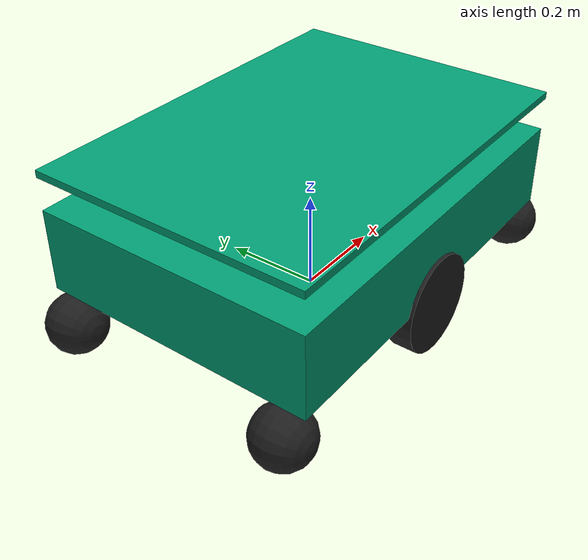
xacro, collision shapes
<?xml version="1.0"?>
<robot xmlns:xacro="http://www.ros.org/wiki/xacro" name="bcr_bot_amr2">

    <!--................................ XACRO CONSTANTS .............................. -->

    <!-- AMR-2 Scout: lighter chassis (45 kg vs AMR-1's 70 kg ≈ 64%) -->
    <xacro:property name="chassis_mass" value="45"/>
    <xacro:property name="chassis_length" value="0.81"/>
    <xacro:property name="chassis_width" value="0.576"/>
    <xacro:property name="chassis_height" value="0.171"/>

    <xacro:property name="traction_wheel_mass" value="1"/>
    <xacro:property name="traction_wheel_base" value="0.792"/>
    <xacro:property name="traction_max_wheel_torque" value="20000"/>
    <xacro:property name="traction_wheel_friction" value="5.0"/>

    <xacro:property name="trolley_wheel_mass" value="0.1"/>
    <xacro:property name="trolley_track_width" value="0.486"/>
    <xacro:property name="trolley_wheel_friction" value="0.0"/>
    <xacro:property name="trolley_wheel_radius" value="0.06"/>
    <!-- a small constant for drive wheel ground engagement (3mm preload to prevent teeter-totter) -->
    <xacro:property name="eps" value="0.003"/>

    <xacro:property name="traction_wheel_radius" value="0.1"/>
    <xacro:property name="traction_wheel_width" value="0.05"/>
    <xacro:property name="traction_track_width" value="0.54"/>

    <xacro:property name="two_d_lidar_update_rate" value="30"/>
    <xacro:property name="two_d_lidar_sample_size" value="361"/>
    <xacro:property name="two_d_lidar_min_angle" value="0"/>
    <xacro:property name="two_d_lidar_max_angle" value="360"/>
    <xacro:property name="two_d_lidar_min_range" value="0.55"/>
    <xacro:property name="two_d_lidar_max_range" value="16"/>

    <xacro:property name="camera_baseline" value="0.06"/>
    <xacro:property name="camera_height" value="0.10"/>
    <xacro:property name="camera_horizontal_fov" value="60"/>

    <xacro:arg name="robot_name" default="bcr_bot_amr2"/>
    <xacro:arg name="robot_namespace" default=""/>
    <xacro:arg name="wheel_odom_topic" default="odom" />
    <xacro:arg name="camera_enabled" default="false" />
    <xacro:arg name="stereo_camera_enabled" default="false" />
    <xacro:arg name="two_d_lidar_enabled" default="false" />
    <xacro:arg name="publish_wheel_odom_tf" default="true" />
    <xacro:arg name="conveyor_enabled" default="false"/>
    <xacro:arg name="ground_truth_frame" default="map"/>
    <xacro:arg name="sim_gazebo" default="false" />
    <xacro:arg name="sim_ign" default="false" />
    <xacro:arg name="sim_gz" default="false" />
    <xacro:arg name="odometry_source" default="world" />

    <xacro:property name="odometry_source" value="$(arg odometry_source)"/>

    <!-- ............................... LOAD MACROS ................................. -->

    <xacro:include filename="$(find amr_sim)/urdf/materials.xacro"/>
    <xacro:include filename="$(find amr_sim)/urdf/macros.xacro"/>

    <xacro:if value="$(arg sim_gazebo)">
        <xacro:include filename="$(find amr_sim)/urdf/gazebo.xacro"/>
    </xacro:if>

    <xacro:if value="$(arg sim_ign)">
        <xacro:include filename="$(find amr_sim)/urdf/ign.xacro"/>
    </xacro:if>

    <xacro:if value="$(arg sim_gz)">
        <xacro:include filename="$(find amr_sim)/urdf/gz_amr2.xacro"/>
    </xacro:if>

    <!-- ................................ BASE LINK .................................. -->
    <link name="base_footprint"/>

    <link name="base_link"/>

    <joint name="base_joint" type="fixed">
        <parent link="base_footprint"/>
        <child link="base_link"/>
        <origin xyz="0.0 0 ${chassis_height/2 + traction_wheel_radius}" rpy="0 0 0.0" />
    </joint>

    <link name="chassis_link">

        <collision>
            <origin xyz="0 0 0.0" rpy="0 0 0" />
            <geometry>
                <box size="${chassis_length} ${chassis_width} ${chassis_height}"/>
            </geometry>
        </collision>

        <visual>
            <origin xyz="0 0 -0.205" rpy="0 0 0" />
            <geometry>
                <mesh filename="package://amr_sim/meshes/bcr_bot_mesh.dae" scale="0.9 0.9 0.9"/>
            </geometry>
        </visual>

        <inertial>
            <mass value="${chassis_mass}" />
            <xacro:box_inertia m="${chassis_mass}" x="${chassis_length}" y="${chassis_width}" z = "${chassis_height}"/>
        </inertial>

    </link>

    <joint name="chassis_joint" type="fixed">
        <parent link="base_link"/>
        <child link="chassis_link"/>
        <origin xyz="0.0 0 0" rpy="0 0 0.0" />
    </joint>

    <!-- ................................ WHEELS ..................................... -->

    <xacro:trolley_wheel cardinality="front" dexterity="left" origin_x="${chassis_length/2}" origin_y="${trolley_track_width/2}" origin_z="-${trolley_wheel_radius+chassis_height/2}"/>
    <xacro:trolley_wheel cardinality="front" dexterity="right" origin_x="${chassis_length/2}" origin_y="-${trolley_track_width/2}" origin_z="-${trolley_wheel_radius+chassis_height/2}"/>

    <xacro:trolley_wheel cardinality="back" dexterity="left" origin_x="-${chassis_length/2}" origin_y="${trolley_track_width/2}" origin_z="-${trolley_wheel_radius+chassis_height/2}"/>
    <xacro:trolley_wheel cardinality="back" dexterity="right" origin_x="-${chassis_length/2}" origin_y="-${trolley_track_width/2}" origin_z="-${trolley_wheel_radius+chassis_height/2}"/>

    <xacro:traction_wheel cardinality="middle" dexterity="left" origin_x="0" origin_y="${traction_track_width/2}" origin_z="-${chassis_height/2+2*trolley_wheel_radius+eps-traction_wheel_radius}"/>
    <xacro:traction_wheel cardinality="middle" dexterity="right" origin_x="0" origin_y="-${traction_track_width/2}" origin_z="-${chassis_height/2+2*trolley_wheel_radius+eps-traction_wheel_radius}"/>

    <!-- ............................. 2D LIDAR ........................................ -->

    <xacro:if value="$(arg two_d_lidar_enabled)">

        <link name="two_d_lidar">
            <collision>
                <origin xyz="0 0 0" rpy="0 0 0" />
                <geometry>
                    <cylinder length="0.06" radius="0.075"/>
                </geometry>
            </collision>

            <visual>
                <origin xyz="0 0 0" rpy="0 0 0" />
                <geometry>
                    <cylinder length="0.06" radius="0.075"/>
                </geometry>
                <material name="aluminium"/>
            </visual>

            <inertial>
                <origin xyz="0 0 0" rpy="0 0 0" />
                <mass value="0.1"/>
                <xacro:cylinder_inertia m="0.1" r="0.075" h="0.06"/>
            </inertial>
        </link>

        <joint name="two_d_lidar_joint" type="fixed">
            <parent link="base_link"/>
            <child link="two_d_lidar"/>
            <origin xyz="0.0 0 0.09" rpy="0 0 0" />
        </joint>

        <gazebo reference="two_d_lidar">
            <material>Gazebo/White</material>
        </gazebo>

    </xacro:if>

    <!-- ............................. IMU ........................................ -->

    <link name="imu_frame"/>

    <joint name="imu_joint" type="fixed">
        <parent link="base_link"/>
        <child link="imu_frame"/>
        <origin xyz="0.0 0.0 0.08" rpy="0.0 0.0 0.0"/>
    </joint>

    <!-- ............................. CAMERA ........................................ -->

    <xacro:if value="$(arg camera_enabled)">

        <!-- KINECT CAMERA -->

        <link name="kinect_camera">

            <collision>
                <origin xyz="0 0 0" rpy="0 0 0" />
                <geometry>
                    <box size="0.07 0.3 0.09"/>
                </geometry>
            </collision>

            <visual>
                <origin xyz="0 0 0" rpy="0 0 0" />
                <geometry>
                    <mesh filename="package://amr_sim/meshes/kinect/d415.dae"/>
                </geometry>
                <material name="black"/>
            </visual>

            <inertial>
                <mass value="0.01"/>
                <xacro:box_inertia m="0.01" x="0.07" y="0.3" z = "0.09"/>
            </inertial>

        </link>

        <joint name="kinect_camera_joint" type="fixed">
            <origin rpy="0 0 0" xyz="${chassis_length/2} 0 ${chassis_height/7}"/>
            <parent link="base_link"/>
            <child link="kinect_camera"/>
        </joint>

        <link name="kinect_camera_optical"/>

        <joint name="kinect_camera_optical_joint" type="fixed">
            <origin xyz="0 0 0" rpy="${-pi/2} 0 ${-pi/2}"/>
            <parent link="kinect_camera"/>
            <child link="kinect_camera_optical"/>
        </joint>

    </xacro:if>

    <!-- .............................STEREO CAMERA ........................................ -->

    <xacro:if value="$(arg stereo_camera_enabled)">

        <!-- STEREO CAMERA -->

        <link name="stereo_camera">

            <collision>
                <origin xyz="0 0 0" rpy="0 0 0" />
                <geometry>
                    <box size="0.07 0.3 0.09"/>
                </geometry>
            </collision>

            <visual>
                <origin xyz="0 0 0" rpy="0 0 0" />
                <geometry>
                    <mesh filename="package://amr_sim/meshes/kinect/d415.dae"/>
                </geometry>
                <material name="black"/>
            </visual>

            <inertial>
                <mass value="0.01"/>
                <xacro:box_inertia m="0.01" x="0.07" y="0.3" z = "0.09"/>
            </inertial>

        </link>

        <joint name="stereo_camera_joint" type="fixed">
            <origin rpy="0 0 0" xyz="${chassis_length/2} 0 ${chassis_height/7}"/>
            <parent link="base_link"/>
            <child link="stereo_camera"/>
        </joint>

        <link name="stereo_camera_optical"/>

        <joint name="stereo_camera_optical_joint" type="fixed">
            <origin xyz="0 0 0" rpy="${-pi/2} 0 ${-pi/2}"/>
            <parent link="stereo_camera"/>
            <child link="stereo_camera_optical"/>
        </joint>

    </xacro:if>

    <!-- ............................. ROOF ........................................ -->

    <link name="roof_link">

        <collision>
            <origin xyz="0 0 0" rpy="0 0 0" />
            <geometry>
                <box size="${chassis_length} ${chassis_width} 0.015"/>
            </geometry>
        </collision>

        <inertial>
            <mass value="1"/>
            <xacro:box_inertia m="1" x="${chassis_length}" y="${chassis_width}" z = "0.015"/>
        </inertial>

    </link>

    <joint name="roof joint" type="fixed">
        <parent link="chassis_link"/>
        <child link="roof_link"/>
        <origin xyz="0 0 0.16" rpy="0 0 0" />
    </joint>

    <!-- ............................. CONVEYOR ........................................ -->

    <xacro:if value="$(arg conveyor_enabled)">

        <link name="conveyor_belt">

            <collision>
                <origin xyz="0 0 0" rpy="0 0 0" />
                <geometry>
                    <box size="1 0.6 0.015"/>
                </geometry>
            </collision>

            <visual>
                <origin xyz="0 0 0" rpy="0 0 0"/>
                <geometry>
                    <box size="1 0.6 0.015"/>
                </geometry>
            </visual>

            <inertial>
                <mass value="1"/>
                <xacro:box_inertia m="1" x="1" y="0.6" z = "0.015"/>
            </inertial>

        </link>

        <joint name="conveyor_joint" type="fixed">
            <parent link="base_link"/>
            <child link="conveyor_belt"/>
            <origin xyz="0 0 0.25" rpy="0 0 0" />
        </joint>

    </xacro:if>

</robot>

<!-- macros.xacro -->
<robot xmlns:xacro="http://www.ros.org/wiki/xacro" name="bcr_bot">

    <!--................................ INERTIA MATRICES .............................. -->

    <xacro:macro name="cylinder_inertia" params="m r h">
        <inertia ixx="${m * (3 * r * r + h * h) / 12}" ixy="0" ixz="0" iyy="${m * (3 * r * r + h * h) / 12}" iyz="0" izz="${m * r * r / 2}" />
    </xacro:macro>

    <xacro:macro name="box_inertia" params="m x y z">
        <inertia ixx="${m * (y * y + z * z) / 12}" ixy="0" ixz="0" iyy="${m * (x * x + z * z) / 12}" iyz="0" izz="${m * (y * y + x * x) / 12}" />
    </xacro:macro>

    <xacro:macro name="sphere_inertia" params="m r">
        <inertia ixx="${2 * m * r * r / 5}" ixy="0" ixz="0" iyy="${2 * m * r * r / 5}" iyz="0" izz="${2 * m * r * r / 5}" />
    </xacro:macro>

    <!-- ............................... TROLLEY WHEEL DEFINITION .............................. -->

    <xacro:macro name="trolley_wheel" params="cardinality dexterity origin_x origin_y origin_z">
        <link name="${cardinality}_${dexterity}_wheel">
            <collision>
                <origin xyz="0 0 0" rpy="0 ${pi/2} ${pi/2}" />
                <geometry>
                    <sphere radius="${trolley_wheel_radius}"/>
                </geometry>
            </collision>

            <inertial>
                <origin xyz="0 0 0" rpy="0 0 0" />
                <mass value="${trolley_wheel_mass}"/>
                <xacro:sphere_inertia m="${trolley_wheel_mass}" r="${trolley_wheel_radius}"/>
            </inertial>
        </link>

        <gazebo reference="${cardinality}_${dexterity}_wheel">
            <collision>
                <surface>
                    <friction>
                        <ode>
                            <mu>0.0</mu>
                            <mu2>0.0</mu2>
                            <slip1>1.0</slip1>
                            <slip2>1.0</slip2>
                        </ode>
                    </friction>
                    <contact>
                        <ode>
                            <kp>25000.0</kp>
                            <kd>100.0</kd>
                            <min_depth>0.040</min_depth>
                        </ode>
                    </contact>
                </surface>
            </collision>
        </gazebo>

        <joint name="${cardinality}_${dexterity}_wheel_joint" type="fixed">
            <parent link="base_link"/>
            <child link="${cardinality}_${dexterity}_wheel"/>
            <origin xyz="${origin_x} ${origin_y} ${origin_z}" rpy="0 0 0" />
            <axis xyz="0 1 0" rpy="0 0 0" />
        </joint>

        <gazebo reference="${cardinality}_${dexterity}_wheel">
            <material>Gazebo/Black</material>
        </gazebo>
    </xacro:macro>

    <xacro:macro name="traction_wheel" params="cardinality dexterity origin_x origin_y origin_z">
        <link name="${cardinality}_${dexterity}_wheel">
            <collision>
                <origin xyz="0 0 0" rpy="0 ${pi/2} ${pi/2}" />
                <geometry>
                    <cylinder length="${traction_wheel_width}" radius="${traction_wheel_radius}"/>
                </geometry>
                <self_collide>false</self_collide>
            </collision>

            <inertial>
                <origin xyz="0 0 0" rpy="0 ${pi/2} ${pi/2}" />
                <mass value="${traction_wheel_mass}"/>
                <xacro:cylinder_inertia m="${traction_wheel_mass}" r="${traction_wheel_radius}" h="${traction_wheel_width}"/>
            </inertial>
        </link>

        <gazebo reference="${cardinality}_${dexterity}_wheel">
            <collision>
                <surface>
                    <friction>
                        <ode>
                            <mu>10.0</mu>
                            <mu2>10.0</mu2>
                            <slip1>0.0</slip1>
                            <slip2>0.0</slip2>
                        </ode>
                    </friction>
                    <contact>
                        <ode>
                            <kp>1000000.0</kp>
                            <kd>10.0</kd>
                            <min_depth>0.005</min_depth>
                        </ode>
                    </contact>
                </surface>
            </collision>
        </gazebo>

        <joint name="${cardinality}_${dexterity}_wheel_joint" type="continuous">
            <parent link="base_link"/>
            <child link="${cardinality}_${dexterity}_wheel"/>
            <origin xyz="${origin_x} ${origin_y} ${origin_z}" rpy="0 0 0" />
            <axis xyz="0 1 0" rpy="0 0 0" />
        </joint>

        <gazebo reference="${cardinality}_${dexterity}_wheel">
            <material>Gazebo/Black</material>
        </gazebo>
    </xacro:macro>

</robot>
